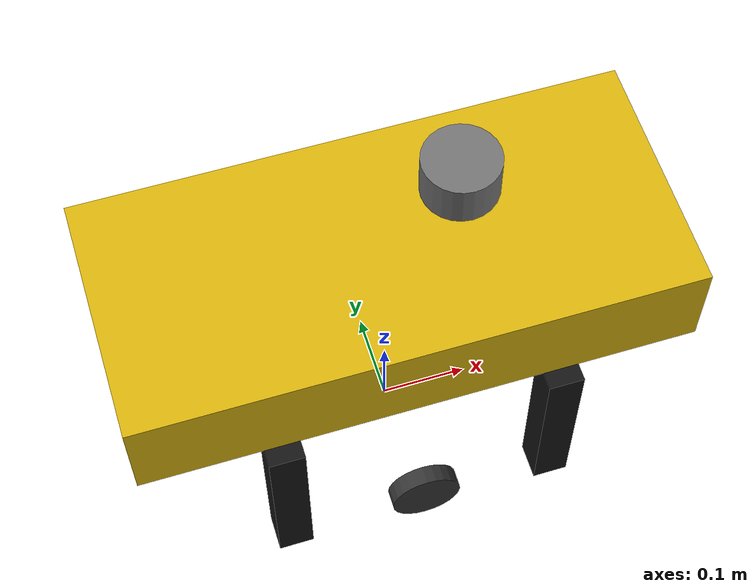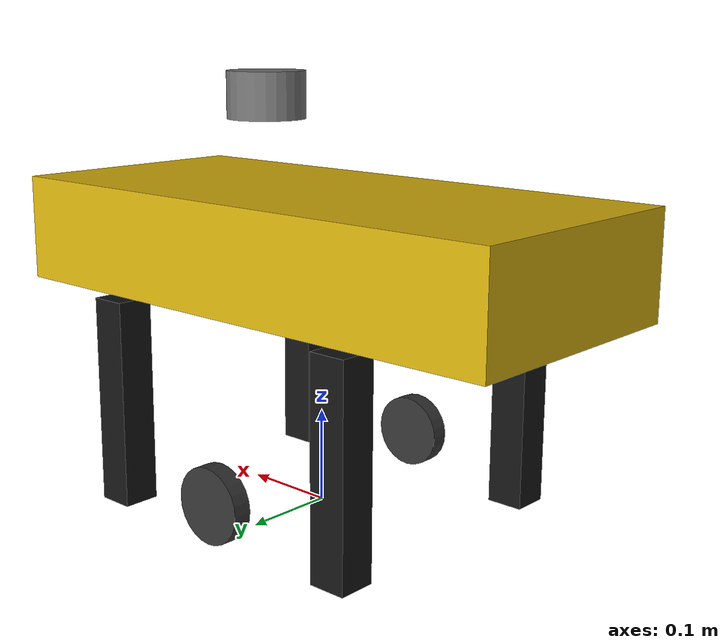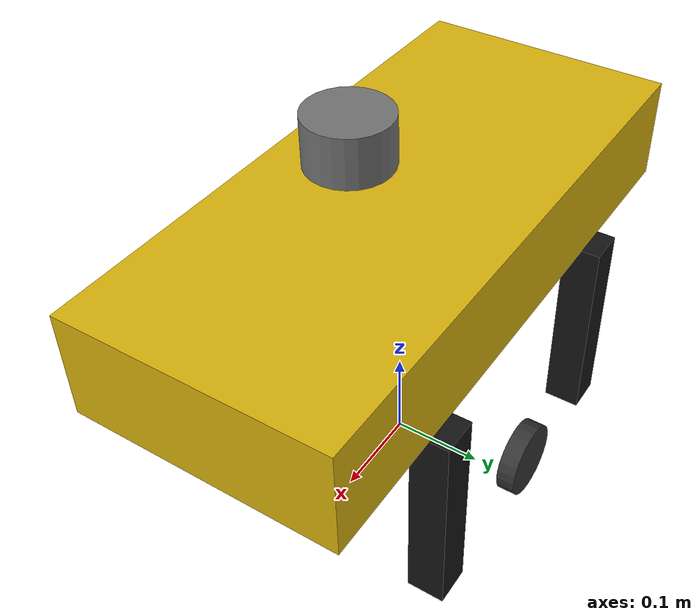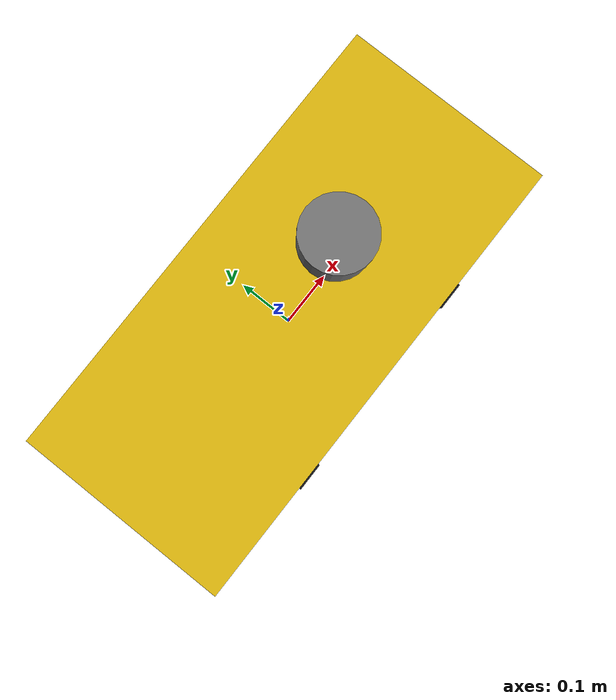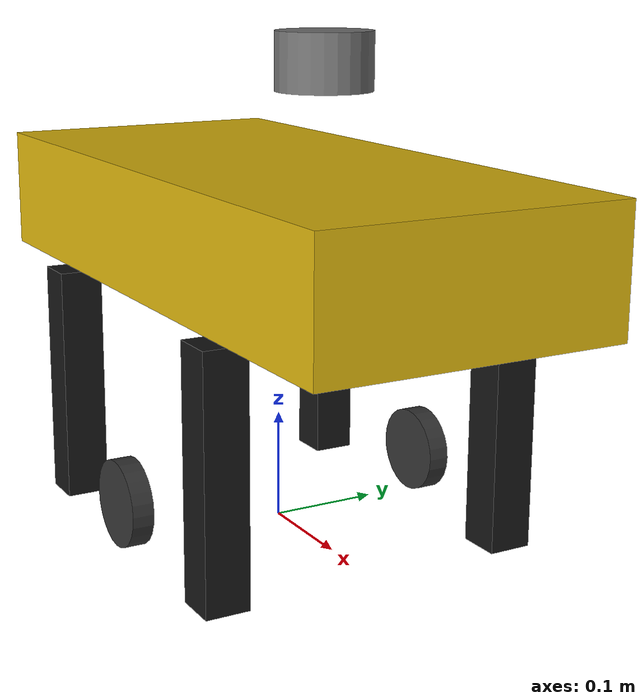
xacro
<?xml version="1.0"?>
<robot name="go2" xmlns:xacro="http://ros.org/wiki/xacro">

  <!-- Go2 Pro body dimensions -->
  <xacro:property name="body_l" value="0.62"/>
  <xacro:property name="body_w" value="0.28"/>
  <xacro:property name="body_h" value="0.114"/>
  <!-- Standing height: center of body above ground -->
  <xacro:property name="body_z" value="0.28"/>
  <!-- Leg geometry -->
  <xacro:property name="leg_w" value="0.04"/>
  <xacro:property name="leg_h" value="0.223"/>  <!-- body_z - body_h/2 -->
  <!-- Diff-drive wheels (virtual, hidden under body) -->
  <xacro:property name="wheel_r" value="0.04"/>
  <xacro:property name="wheel_t" value="0.02"/>
  <!-- LiDAR (Livox Mid360 simplified as 2D scanner) -->
  <xacro:property name="laser_h" value="0.05"/>
  <xacro:property name="M_PI" value="3.14159265359"/>

  <material name="go2_yellow"><color rgba="0.85 0.70 0.05 1.0"/></material>
  <material name="go2_black"><color rgba="0.08 0.08 0.08 1.0"/></material>
  <material name="go2_grey"><color rgba="0.45 0.45 0.45 1.0"/></material>
  <material name="go2_dark"><color rgba="0.20 0.20 0.20 1.0"/></material>

  <!-- ==================== base_footprint ==================== -->
  <link name="base_footprint">
    <visual>
      <geometry><box size="0.001 0.001 0.001"/></geometry>
    </visual>
  </link>

  <!-- ==================== body ==================== -->
  <link name="base_link">
    <visual>
      <origin xyz="0 0 0" rpy="0 0 0"/>
      <geometry><box size="${body_l} ${body_w} ${body_h}"/></geometry>
      <material name="go2_yellow"/>
    </visual>
    <collision>
      <origin xyz="0 0 0" rpy="0 0 0"/>
      <geometry><box size="${body_l} ${body_w} ${body_h}"/></geometry>
    </collision>
    <inertial>
      <origin xyz="0 0 0" rpy="0 0 0"/>
      <mass value="12.0"/>
      <inertia ixx="0.168" ixy="0" ixz="0" iyy="0.422" iyz="0" izz="0.517"/>
    </inertial>
  </link>

  <joint name="base_joint" type="fixed">
    <parent link="base_footprint"/>
    <child link="base_link"/>
    <origin xyz="0 0 ${body_z}" rpy="0 0 0"/>
  </joint>

  <!-- ==================== legs (4×, visual + collision only) ==================== -->
  <xacro:macro name="leg" params="name px py">
    <link name="${name}_link">
      <visual>
        <origin xyz="0 0 ${-leg_h/2}" rpy="0 0 0"/>
        <geometry><box size="${leg_w} ${leg_w} ${leg_h}"/></geometry>
        <material name="go2_black"/>
      </visual>
      <!-- No collision on legs — they are visual only; wheels provide ground contact -->
      <inertial>
        <mass value="0.2"/>
        <inertia ixx="0.0002" ixy="0" ixz="0" iyy="0.0002" iyz="0" izz="0.0002"/>
      </inertial>
    </link>
    <joint name="${name}_joint" type="fixed">
      <parent link="base_link"/>
      <child link="${name}_link"/>
      <origin xyz="${px} ${py} ${-body_h/2}" rpy="0 0 0"/>
    </joint>
  </xacro:macro>

  <xacro:leg name="fl_leg" px=" 0.155" py=" 0.14"/>
  <xacro:leg name="fr_leg" px=" 0.155" py="-0.14"/>
  <xacro:leg name="rl_leg" px="-0.155" py=" 0.14"/>
  <xacro:leg name="rr_leg" px="-0.155" py="-0.14"/>

  <!-- ==================== diff-drive wheels (virtual) ==================== -->
  <xacro:macro name="wheel" params="name side">
    <link name="${name}_link">
      <visual>
        <origin xyz="0 0 0" rpy="${M_PI/2} 0 0"/>
        <geometry><cylinder radius="${wheel_r}" length="${wheel_t}"/></geometry>
        <material name="go2_dark"/>
      </visual>
      <collision>
        <origin xyz="0 0 0" rpy="${M_PI/2} 0 0"/>
        <geometry><cylinder radius="${wheel_r}" length="${wheel_t}"/></geometry>
      </collision>
      <inertial>
        <mass value="0.3"/>
        <inertia ixx="0.0003" ixy="0" ixz="0" iyy="0.0003" iyz="0" izz="0.0005"/>
      </inertial>
    </link>
    <joint name="${name}_joint" type="continuous">
      <parent link="base_link"/>
      <child link="${name}_link"/>
      <!-- wheels at y = ±(body_w/2 + wheel_t/2 + gap), z flush with ground -->
      <origin xyz="0 ${side * (body_w/2 + wheel_t/2 + 0.005)} ${-(body_z - wheel_r)}" rpy="0 0 0"/>
      <axis xyz="0 1 0"/>
    </joint>
  </xacro:macro>

  <xacro:wheel name="left_wheel"  side=" 1"/>
  <xacro:wheel name="right_wheel" side="-1"/>

  <!-- ==================== LiDAR frame ==================== -->
  <!-- No collision on laser_frame: the sensor housing is virtual; collision causes
       Gazebo's ray sensor to detect its own mount geometry at ~0.5 m ahead. -->
  <link name="laser_frame">
    <visual>
      <origin xyz="0 0 0" rpy="0 0 0"/>
      <geometry><cylinder radius="0.042" length="${laser_h}"/></geometry>
      <material name="go2_grey"/>
    </visual>
    <inertial>
      <mass value="0.1"/>
      <inertia ixx="0.0001" ixy="0" ixz="0" iyy="0.0001" iyz="0" izz="0.0001"/>
    </inertial>
  </link>

  <joint name="laser_joint" type="fixed">
    <parent link="base_link"/>
    <child link="laser_frame"/>
    <!-- raised to 0.15m above base_link (0.43m above ground) — avoids self-scans at any tilt -->
    <origin xyz="0.08 0 0.15" rpy="0 0 0"/>
  </joint>

  <!-- ==================== Gazebo: body color ==================== -->
  <gazebo reference="base_link">
    <material>Gazebo/Yellow</material>
    <laser_retro>0</laser_retro>
  </gazebo>
  <gazebo reference="fl_leg_link"><material>Gazebo/Black</material></gazebo>
  <gazebo reference="fr_leg_link"><material>Gazebo/Black</material></gazebo>
  <gazebo reference="rl_leg_link"><material>Gazebo/Black</material></gazebo>
  <gazebo reference="rr_leg_link"><material>Gazebo/Black</material></gazebo>
  <gazebo reference="laser_frame"><material>Gazebo/Grey</material></gazebo>
  <gazebo reference="left_wheel_link"><material>Gazebo/DarkGrey</material></gazebo>
  <gazebo reference="right_wheel_link"><material>Gazebo/DarkGrey</material></gazebo>

  <!-- ==================== Gazebo: differential drive ==================== -->
  <gazebo>
    <plugin name="go2_diff_drive" filename="libgazebo_ros_diff_drive.so">
      <ros><namespace></namespace></ros>
      <update_rate>50</update_rate>
      <left_joint>left_wheel_joint</left_joint>
      <right_joint>right_wheel_joint</right_joint>
      <!-- wheel_separation = 2 × (body_w/2 + wheel_t/2 + gap) = 2 × (0.14+0.01+0.005) = 0.31 -->
      <wheel_separation>0.31</wheel_separation>
      <wheel_diameter>${2 * wheel_r}</wheel_diameter>
      <max_wheel_torque>80</max_wheel_torque>
      <max_wheel_acceleration>4.0</max_wheel_acceleration>
      <command_topic>cmd_vel</command_topic>
      <publish_odom>true</publish_odom>
      <publish_odom_tf>true</publish_odom_tf>
      <publish_wheel_tf>false</publish_wheel_tf>
      <odometry_topic>odom</odometry_topic>
      <odometry_frame>odom</odometry_frame>
      <!-- robot_base_frame must match Nav2 base_frame_id -->
      <robot_base_frame>base_footprint</robot_base_frame>
    </plugin>
  </gazebo>

  <!-- ==================== Gazebo: 2-D LiDAR (Livox Mid360 simplified) ==================== -->
  <gazebo reference="laser_frame">
    <sensor type="ray" name="livox_mid360_sim">
      <pose>0 0 0 0 0 0</pose>
      <visualize>false</visualize>
      <update_rate>10</update_rate>
      <ray>
        <scan>
          <horizontal>
            <samples>360</samples>
            <resolution>1</resolution>
            <min_angle>-3.14159265</min_angle>
            <max_angle> 3.14159265</max_angle>
          </horizontal>
        </scan>
        <range>
          <min>0.30</min>
          <max>30.0</max>
          <resolution>0.01</resolution>
        </range>
        <noise>
          <type>gaussian</type>
          <mean>0.0</mean>
          <stddev>0.005</stddev>
        </noise>
      </ray>
      <plugin name="gazebo_ros_laser" filename="libgazebo_ros_ray_sensor.so">
        <ros>
          <remapping>~/out:=scan</remapping>
        </ros>
        <output_type>sensor_msgs/LaserScan</output_type>
        <frame_name>laser_frame</frame_name>
      </plugin>
    </sensor>
  </gazebo>

  <!-- ==================== Gazebo: IMU ==================== -->
  <gazebo reference="base_link">
    <sensor name="go2_imu" type="imu">
      <always_on>true</always_on>
      <update_rate>100</update_rate>
      <plugin filename="libgazebo_ros_imu_sensor.so" name="go2_imu_plugin">
        <ros><remapping>~/out:=imu</remapping></ros>
        <initial_orientation_as_reference>false</initial_orientation_as_reference>
      </plugin>
    </sensor>
  </gazebo>

</robot>
